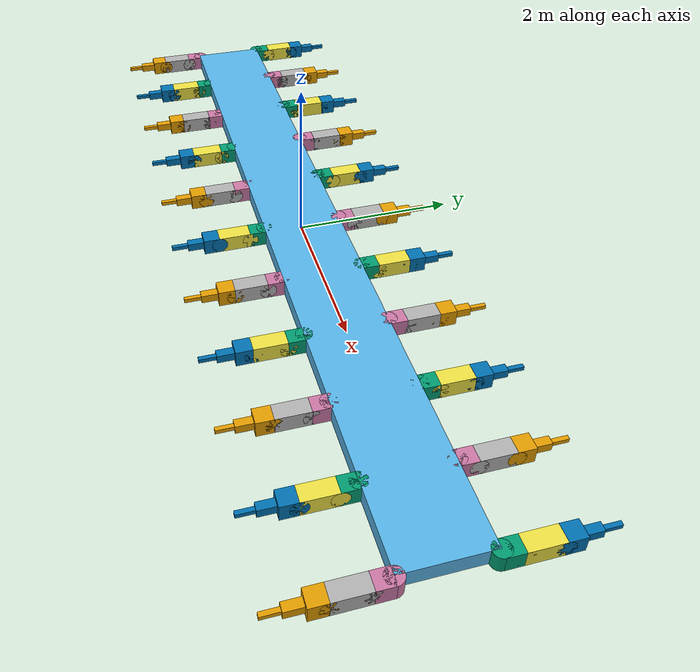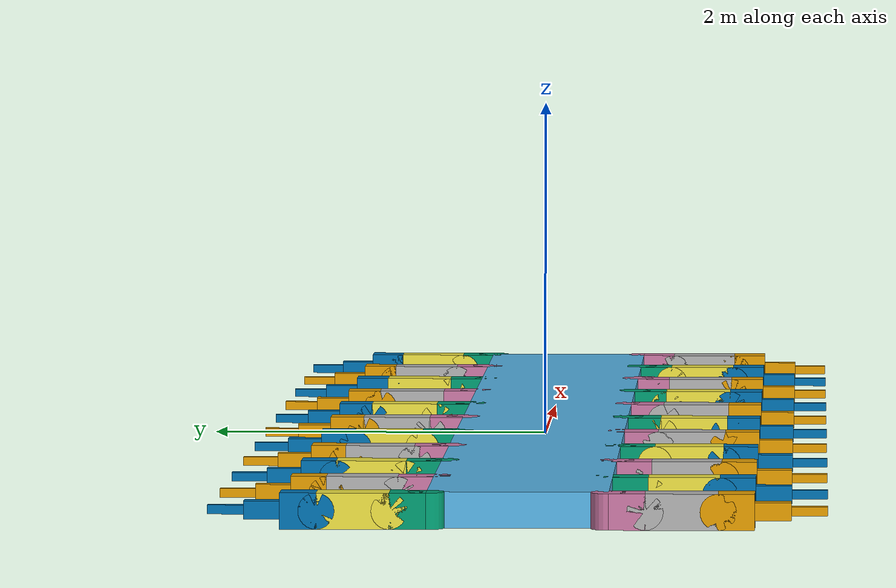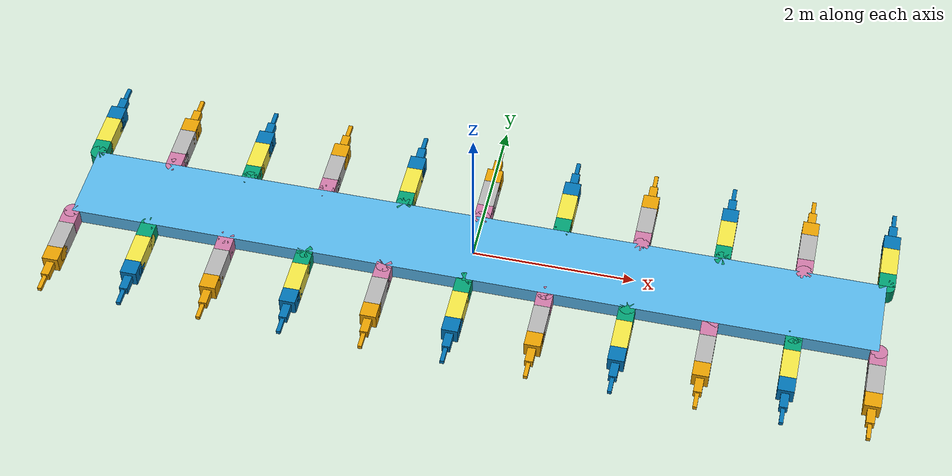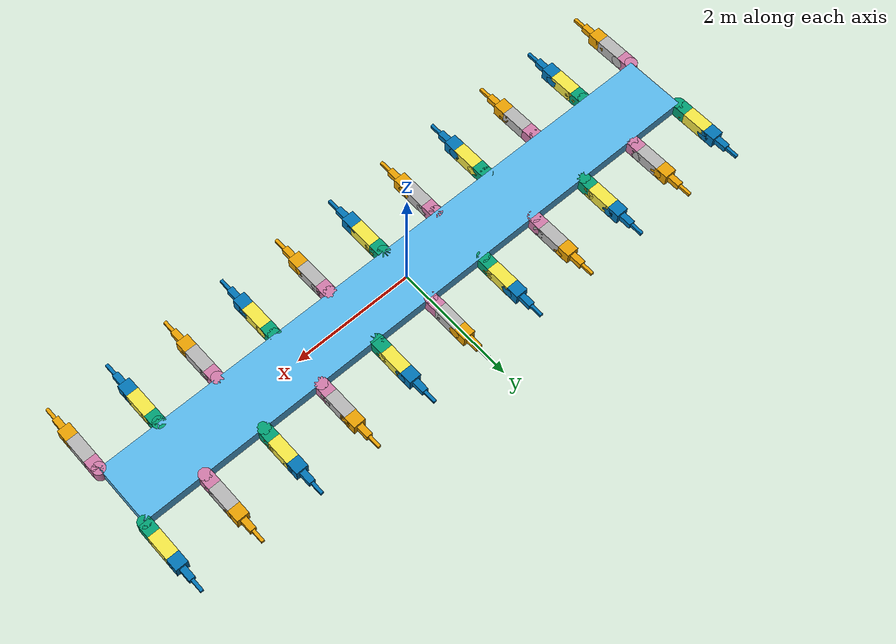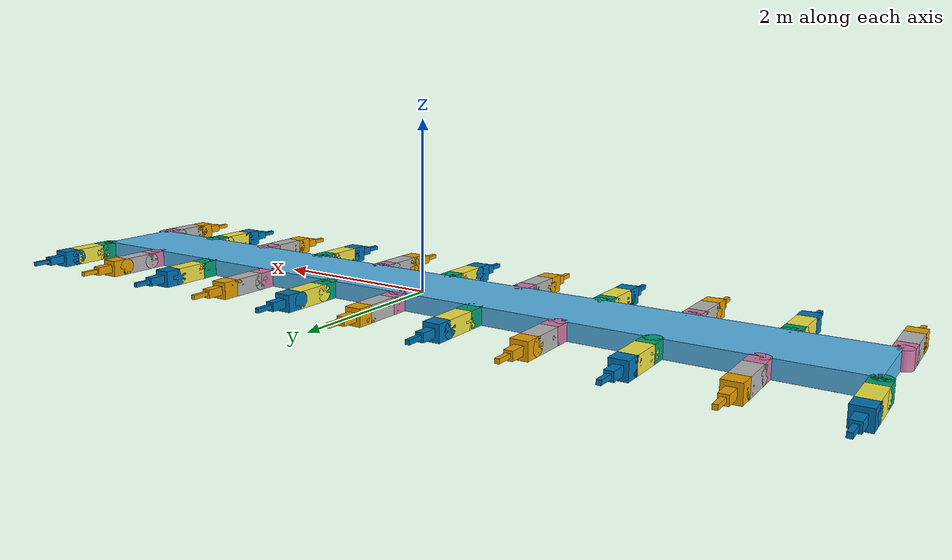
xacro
<?xml version="1.0"?>
<robot name="hexapod" xmlns:xacro="http://ros.org/wiki/xacro">

  <xacro:property name="length" value="10.0" />
  <xacro:property name="width" value="1.0" />
  <xacro:property name="depth" value="${width/5.0}" />
  <xacro:property name="joint_1_lower_limit" value="${-pi}" />
  <xacro:property name="joint_1_upper_limit" value="${pi}" />
  <xacro:property name="joint_1_offset" value="${0}" />
  <xacro:property name="joint_2_lower_limit" value="${-pi}" />
  <xacro:property name="joint_2_upper_limit" value="${pi}" />
  <xacro:property name="joint_2_offset" value="${0}" />
  <xacro:property name="joint_3_lower_limit" value="${-pi}" />
  <xacro:property name="joint_3_upper_limit" value="${pi}" />
  <xacro:property name="joint_3_offset" value="${0}" />
  <xacro:property name="num_legs" value="8" />

  <link name="base_link">
  </link>

  <!-- Probably change to floating joint type in future. Will need to publish transform directly (not via joint state publisher. -->
  <joint name="base_to_body" type="floating">
    <parent link="base_link"/>
    <child link="body_link"/>
    <origin rpy="0 0 0" xyz="0 0 0"/>
  </joint>

  <link name="body_link">
    <visual>
      <geometry>
        <box size="${length} ${width} ${depth}"/>
      </geometry>
    </visual>
  </link>

  <xacro:macro name="joint_shape">
        <cylinder length="${depth}" radius="${depth/2}"/>
  </xacro:macro >

  <xacro:macro name="leg" params="position side reflect_leftright forward_position">

  <joint name="leg_${position}_${side}_joint_1" type="revolute">
    <parent link="body_link"/>
    <child link="leg_${position}_${side}_link_1"/>
    <origin rpy="0 0 ${reflect_leftright*pi/2}" xyz="${forward_position} ${reflect_leftright*width/2} 0"/>
    <axis xyz="0 0 1"/>
    <limit lower="${joint_1_lower_limit}" upper="${joint_1_upper_limit}" effort="100" velocity="100" />
  </joint>

  <link name="leg_${position}_${side}_link_1">
    <visual>
      <geometry>
        <xacro:joint_shape />
      </geometry>
    </visual>
    <visual>
      <geometry>
        <box size="${depth} ${depth} ${depth}"/>
      </geometry>
      <origin rpy="0 0 0" xyz="${depth/2} 0 0"/>
    </visual>
  </link>

  <joint name="leg_${position}_${side}_joint_2" type="revolute">
    <parent link="leg_${position}_${side}_link_1"/>
    <child link="leg_${position}_${side}_link_2"/>
    <origin rpy="${pi/2} ${joint_2_offset} 0" xyz="${depth} 0 0"/>
    <axis xyz="0 0 1"/>
    <limit lower="${joint_2_lower_limit}" upper="${joint_2_upper_limit}" effort="100" velocity="100" />
  </joint>

  <link name="leg_${position}_${side}_link_2">
    <visual>
      <geometry>
        <xacro:joint_shape />
      </geometry>
      <origin rpy="0 0 0" xyz="0 0 0"/>
    </visual>
    <visual>
      <geometry>
        <box size="${depth*2} ${depth} ${depth}"/>
      </geometry>
      <origin rpy="0 0 0" xyz="${depth} 0 0"/>
    </visual>
  </link>

  <joint name="leg_${position}_${side}_joint_3" type="revolute">
    <parent link="leg_${position}_${side}_link_2"/>
    <child link="leg_${position}_${side}_link_3"/>
    <origin rpy="0 0 ${joint_3_offset}" xyz="${depth*2} 0 0"/>
    <axis xyz="0 0 1"/>
    <limit lower="${joint_3_lower_limit}" upper="${joint_3_upper_limit}" effort="100" velocity="100" />
  </joint>

  <link name="leg_${position}_${side}_link_3">
    <visual>
      <geometry>
        <xacro:joint_shape />
      </geometry>
      <origin rpy="0 0 0" xyz="0 0 0"/>
    </visual>
    <visual>
      <geometry>
        <box size="${depth} ${depth} ${depth}"/>
      </geometry>
      <origin rpy="0 0 0" xyz="${depth*0.5} 0 0"/>
    </visual>
    <visual>
      <geometry>
        <box size="${depth} ${depth/2} ${depth/2}"/>
      </geometry>
      <origin rpy="0 0 0" xyz="${depth*1.5} 0 0"/>
    </visual>
    <visual>
      <geometry>
        <box size="${depth} ${depth/4} ${depth/4}"/>
      </geometry>
      <origin rpy="0 0 0" xyz="${depth*2.5} 0 0"/>
    </visual>

  </link>

  <joint name="leg_${position}_${side}_joint_4_fixed" type="fixed">
    <parent link="leg_${position}_${side}_link_3"/>
    <child link="leg_${position}_${side}_foot"/>
    <origin rpy="0 0 0" xyz="${depth*3} 0 0"/>
  </joint>

  <link name="leg_${position}_${side}_foot">
  </link>

  </xacro:macro>

  <xacro:leg position="row00" side="left" reflect_leftright="1" forward_position="5" />
  <xacro:leg position="row01" side="left" reflect_leftright="1" forward_position="4" />
  <xacro:leg position="row02" side="left" reflect_leftright="1" forward_position="3" />
  <xacro:leg position="row03" side="left" reflect_leftright="1" forward_position="2" />
  <xacro:leg position="row04" side="left" reflect_leftright="1" forward_position="1" />
  <xacro:leg position="row05" side="left" reflect_leftright="1" forward_position="0" />
  <xacro:leg position="row06" side="left" reflect_leftright="1" forward_position="-1" />
  <xacro:leg position="row07" side="left" reflect_leftright="1" forward_position="-2" />
  <xacro:leg position="row08" side="left" reflect_leftright="1" forward_position="-3" />
  <xacro:leg position="row09" side="left" reflect_leftright="1" forward_position="-4" />
  <xacro:leg position="row10" side="left" reflect_leftright="1" forward_position="-5" />

  <xacro:leg position="row00" side="right" reflect_leftright="-1" forward_position="5" />
  <xacro:leg position="row01" side="right" reflect_leftright="-1" forward_position="4" />
  <xacro:leg position="row02" side="right" reflect_leftright="-1" forward_position="3" />
  <xacro:leg position="row03" side="right" reflect_leftright="-1" forward_position="2" />
  <xacro:leg position="row04" side="right" reflect_leftright="-1" forward_position="1" />
  <xacro:leg position="row05" side="right" reflect_leftright="-1" forward_position="0" />
  <xacro:leg position="row06" side="right" reflect_leftright="-1" forward_position="-1" />
  <xacro:leg position="row07" side="right" reflect_leftright="-1" forward_position="-2" />
  <xacro:leg position="row08" side="right" reflect_leftright="-1" forward_position="-3" />
  <xacro:leg position="row09" side="right" reflect_leftright="-1" forward_position="-4" />
  <xacro:leg position="row10" side="right" reflect_leftright="-1" forward_position="-5" />

</robot>
